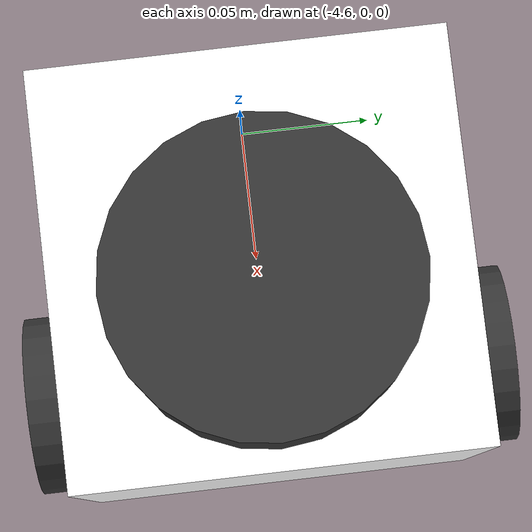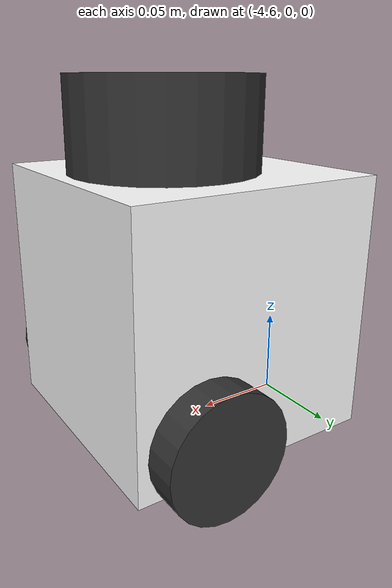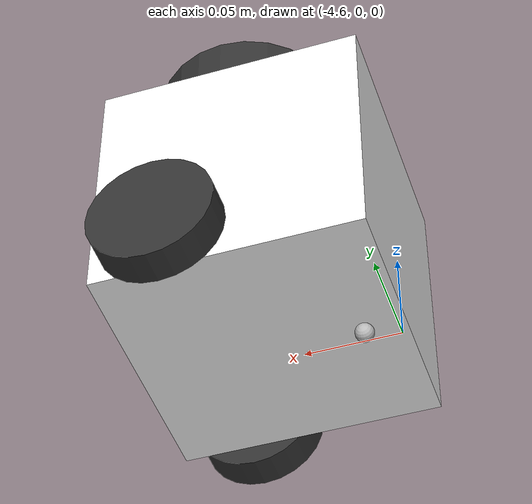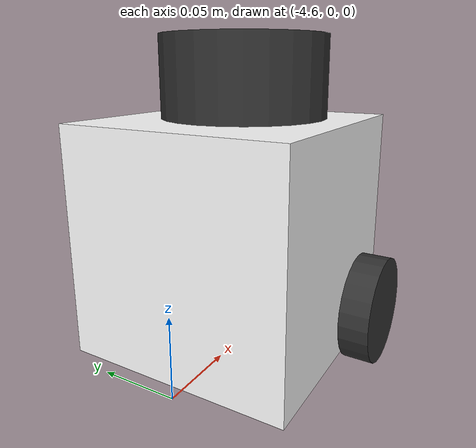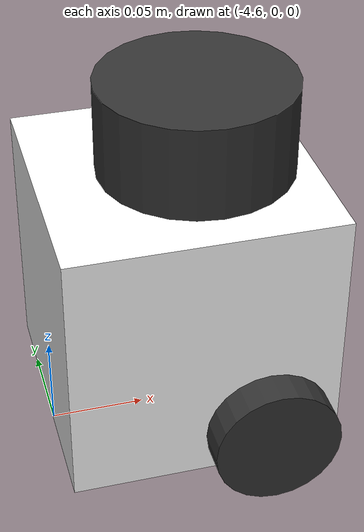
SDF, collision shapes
<?xml version="1.0" ?>
<sdf version="1.8">
  <model name="turtlebot3_burger_stag_000">
    <pose>-4.5 0 0.01 0 0 0</pose>

    <link name="base_footprint"/>

    <link name="base_link">

    <visual name="stag_marker_cover_000">
      <pose>-0.032 0 0.235 0 0 0</pose>
      <geometry>
        <plane>
          <normal>0 0 1</normal>
          <size>0.5 0.5</size>
        </plane>
      </geometry>
      <material>
        <ambient>1 1 1 1</ambient>
        <diffuse>1 1 1 1</diffuse>
        <specular>0 0 0 1</specular>
        <pbr>
          <metal>
            <albedo_map>file:///home/katya/wspace/src/tracking_assets/markers/stag/tag_000.png</albedo_map>
            <roughness>1.0</roughness>
            <metalness>0.0</metalness>
          </metal>
        </pbr>
      </material>
    </visual>

      <inertial>
        <pose>-0.064 0 0.070 0 0 0</pose>
        <inertia>
          <ixx>1.9527e-02</ixx>
          <ixy>0</ixy>
          <ixz>0</ixz>
          <iyy>1.9527e-02</iyy>
          <iyz>0</iyz>
          <izz>1.9527e-02</izz>
        </inertia>
        <mass>8.2573504e-01</mass>
      </inertial>

      <collision name="base_collision">
        <pose>-0.032 0 0.070 0 0 0</pose>
        <geometry>
          <box>
            <size>0.14 0.14 0.14</size>
          </box>
        </geometry>
      </collision>

      <visual name="base_visual">
        <pose>-0.032 0 0 0 0 0</pose>
        <geometry>
          <mesh>
            <uri>model://turtlebot3_common/meshes/bases/burger_base.stl</uri>
            <scale>0.001 0.001 0.001</scale>
          </mesh>
        </geometry>
        <material>
          <ambient>0.3 0.3 0.3 1.0</ambient>
          <diffuse>0.3 0.3 0.3 1.0</diffuse>
        </material>
      </visual>
    </link>

    <link name="imu_link">
      <sensor name="tb3_imu" type="imu">
        <always_on>true</always_on>
        <update_rate>200</update_rate>
        <topic>turtlebot3_burger_stag_000/imu</topic>
        <imu>
          <angular_velocity>
            <x>
              <noise type="gaussian">
                <mean>0.0</mean>
                <stddev>2e-4</stddev>
              </noise>
            </x>
            <y>
              <noise type="gaussian">
                <mean>0.0</mean>
                <stddev>2e-4</stddev>
              </noise>
            </y>
            <z>
              <noise type="gaussian">
                <mean>0.0</mean>
                <stddev>2e-4</stddev>
              </noise>
            </z>
          </angular_velocity>
          <linear_acceleration>
            <x>
              <noise type="gaussian">
                <mean>0.0</mean>
                <stddev>1.7e-2</stddev>
              </noise>
            </x>
            <y>
              <noise type="gaussian">
                <mean>0.0</mean>
                <stddev>1.7e-2</stddev>
              </noise>
            </y>
            <z>
              <noise type="gaussian">
                <mean>0.0</mean>
                <stddev>1.7e-2</stddev>
              </noise>
            </z>
          </linear_acceleration>
        </imu>
      </sensor>
    </link>

    <link name="base_scan">
      <inertial>
        <pose>-0.020 0 0.161 0 0 0</pose>
        <inertia>
          <ixx>0.0001</ixx>
          <ixy>0.000</ixy>
          <ixz>0.000</ixz>
          <iyy>0.0001</iyy>
          <iyz>0.000</iyz>
          <izz>0.0001</izz>
        </inertia>
        <mass>0.114</mass>
      </inertial>

      <collision name="lidar_sensor_collision">
        <pose>-0.020 0 0.161 0 0 0</pose>
        <geometry>
          <cylinder>
            <radius>0.0508</radius>
            <length>0.055</length>
          </cylinder>
        </geometry>
      </collision>

      <visual name="lidar_sensor_visual">
        <pose>-0.032 0 0.171 0 0 0</pose>
        <geometry>
          <mesh>
            <uri>model://turtlebot3_common/meshes/sensors/lds.stl</uri>
            <scale>0.001 0.001 0.001</scale>
          </mesh>
        </geometry>
        <material>
          <ambient>0.2 0.2 0.2 1.0</ambient>
          <diffuse>0.2 0.2 0.2 1.0</diffuse>
        </material>
      </visual>

      <sensor name="hls_lfcd_lds" type="gpu_lidar">
        <always_on>true</always_on>
        <visualize>true</visualize>
        <pose>-0.032 0 0.171 0 0 0</pose>
        <update_rate>5</update_rate>
        <topic>turtlebot3_burger_stag_000/scan</topic>
        <gz_frame_id>base_scan</gz_frame_id>
        <lidar>
          <scan>
            <horizontal>
              <samples>360</samples>
              <resolution>1.000000</resolution>
              <min_angle>0.000000</min_angle>
              <max_angle>6.280000</max_angle>
            </horizontal>
          </scan>
          <range>
            <min>0.120000</min>
            <max>3.5</max>
            <resolution>0.015000</resolution>
          </range>
          <noise>
            <type>gaussian</type>
            <mean>0.0</mean>
            <stddev>0.01</stddev>
          </noise>
        </lidar>
      </sensor>
    </link>

    <link name="wheel_left_link">
      <inertial>
        <pose>0 0.08 0.023 -1.57 0 0</pose>
        <inertia>
          <ixx>5.445e-05</ixx>
          <ixy>0</ixy>
          <ixz>0</ixz>
          <iyy>5.445e-05</iyy>
          <iyz>0</iyz>
          <izz>1.089e-04</izz>
        </inertia>
        <mass>0.1</mass>
      </inertial>

      <collision name="wheel_left_collision">
        <pose>0 0.08 0.023 -1.57 0 0</pose>
        <geometry>
          <cylinder>
            <radius>0.033</radius>
            <length>0.018</length>
          </cylinder>
        </geometry>
        <surface>
          <friction>
            <ode>
              <mu>100000.0</mu>
              <mu2>100000.0</mu2>
              <fdir1>0 0 0</fdir1>
              <slip1>0.0</slip1>
              <slip2>0.0</slip2>
            </ode>
          </friction>
          <contact>
            <ode>
              <soft_cfm>0</soft_cfm>
              <soft_erp>0.2</soft_erp>
              <kp>1e+5</kp>
              <kd>1</kd>
              <max_vel>0.01</max_vel>
              <min_depth>0.001</min_depth>
            </ode>
          </contact>
        </surface>
      </collision>

      <visual name="wheel_left_visual">
        <pose>0 0.08 0.023 0 0 0</pose>
        <geometry>
          <mesh>
            <uri>model://turtlebot3_common/meshes/wheels/left_tire.stl</uri>
            <scale>0.001 0.001 0.001</scale>
          </mesh>
        </geometry>
        <material>
          <ambient>0.2 0.2 0.2 1.0</ambient>
          <diffuse>0.2 0.2 0.2 1.0</diffuse>
        </material>
      </visual>
    </link>

    <link name="wheel_right_link">
      <inertial>
        <pose>0.0 -0.08 0.023 -1.57 0 0</pose>
        <inertia>
          <ixx>5.445e-05</ixx>
          <ixy>0</ixy>
          <ixz>0</ixz>
          <iyy>5.445e-05</iyy>
          <iyz>0</iyz>
          <izz>1.089e-04</izz>
        </inertia>
        <mass>0.1</mass>
      </inertial>

      <collision name="wheel_right_collision">
        <pose>0.0 -0.08 0.023 -1.57 0 0</pose>
        <geometry>
          <cylinder>
            <radius>0.033</radius>
            <length>0.018</length>
          </cylinder>
        </geometry>
        <surface>
          <friction>
            <ode>
              <mu>100000.0</mu>
              <mu2>100000.0</mu2>
              <fdir1>0 0 0</fdir1>
              <slip1>0.0</slip1>
              <slip2>0.0</slip2>
            </ode>
          </friction>
          <contact>
            <ode>
              <soft_cfm>0</soft_cfm>
              <soft_erp>0.2</soft_erp>
              <kp>1e+5</kp>
              <kd>1</kd>
              <max_vel>0.01</max_vel>
              <min_depth>0.001</min_depth>
            </ode>
          </contact>
        </surface>
      </collision>

      <visual name="wheel_right_visual">
        <pose>0.0 -0.08 0.023 0 0 0</pose>
        <geometry>
          <mesh>
            <uri>model://turtlebot3_common/meshes/wheels/right_tire.stl</uri>
            <scale>0.001 0.001 0.001</scale>
          </mesh>
        </geometry>
        <material>
          <ambient>0.2 0.2 0.2 1.0</ambient>
          <diffuse>0.2 0.2 0.2 1.0</diffuse>
        </material>
      </visual>
    </link>

    <link name='caster_back_link'>
      <pose>-0.081 0 -0.004 -1.57 0 0</pose>
      <inertial>
        <mass>0.005</mass>
        <inertia>
          <ixx>0.00001</ixx>
          <ixy>0.000</ixy>
          <ixz>0.000</ixz>
          <iyy>0.00001</iyy>
          <iyz>0.000</iyz>
          <izz>0.00001</izz>
        </inertia>
      </inertial>
      <collision name='collision'>
        <geometry>
          <sphere>
            <radius>0.005000</radius>
          </sphere>
        </geometry>
        <surface>
          <contact>
            <ode>
              <soft_cfm>0</soft_cfm>
              <soft_erp>0.2</soft_erp>
              <kp>1e+5</kp>
              <kd>1</kd>
              <max_vel>0.01</max_vel>
              <min_depth>0.001</min_depth>
            </ode>
          </contact>
        </surface>
      </collision>
    </link>

    <joint name="base_joint" type="fixed">
      <parent>base_footprint</parent>
      <child>base_link</child>
      <pose>0.0 0.0 0.010 0 0 0</pose>
    </joint>

    <joint name="wheel_left_joint" type="revolute">
      <parent>base_link</parent>
      <child>wheel_left_link</child>
      <pose>0.0 0.08 0.023 -1.57 0 0</pose>
      <axis>
        <xyz>0 0 1</xyz>
        <limit>
          <effort>20</effort>
        </limit>
      </axis>
    </joint>

    <joint name="wheel_right_joint" type="revolute">
      <parent>base_link</parent>
      <child>wheel_right_link</child>
      <pose>0.0 -0.08 0.023 -1.57 0 0</pose>
      <axis>
        <xyz>0 0 1</xyz>
        <limit>
          <effort>20</effort>
        </limit>
      </axis>
    </joint>

    <joint name='caster_back_joint' type='ball'>
      <parent>base_link</parent>
      <child>caster_back_link</child>
    </joint>

    <joint name="imu_joint" type="fixed">
      <parent>base_link</parent>
      <child>imu_link</child>
      <pose>-0.032 0 0.068 0 0 0</pose>
      <axis>
        <xyz>0 0 1</xyz>
      </axis>
    </joint>

    <joint name="lidar_joint" type="fixed">
      <parent>base_link</parent>
      <child>base_scan</child>
      <pose>-0.032 0 0.171 0 0 0</pose>
      <axis>
        <xyz>0 0 1</xyz>
      </axis>
    </joint>

    <plugin filename="gz-sim-diff-drive-system" name="gz::sim::systems::DiffDrive">
      <left_joint>wheel_left_joint</left_joint>
      <right_joint>wheel_right_joint</right_joint>
      <wheel_separation>0.160</wheel_separation>
      <wheel_radius>0.033</wheel_radius>
      <max_linear_acceleration>1.0</max_linear_acceleration>
      <topic>turtlebot3_burger_stag_000/cmd_vel</topic>
      <odom_topic>turtlebot3_burger_stag_000/odom</odom_topic>
      <frame_id>turtlebot3_burger_stag_000/odom</frame_id>
      <child_frame_id>turtlebot3_burger_stag_000/base_footprint</child_frame_id>
      <odom_publisher_frequency>30</odom_publisher_frequency>
      <tf_topic>/tf</tf_topic>
    </plugin>

    <plugin filename="gz-sim-joint-state-publisher-system" name="gz::sim::systems::JointStatePublisher">
      <topic>turtlebot3_burger_stag_000/joint_states</topic>
      <joint_name>wheel_left_joint</joint_name>
      <joint_name>wheel_right_joint</joint_name>
    </plugin>

  </model>
</sdf>
